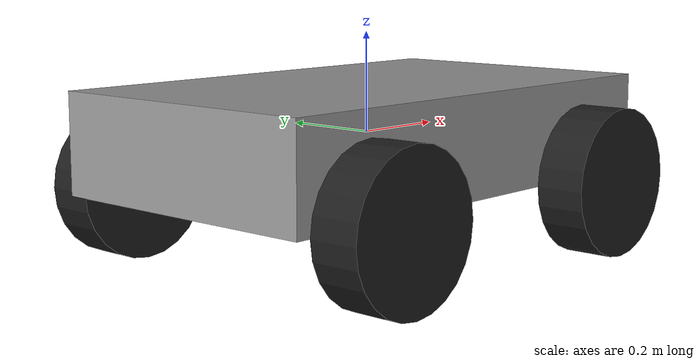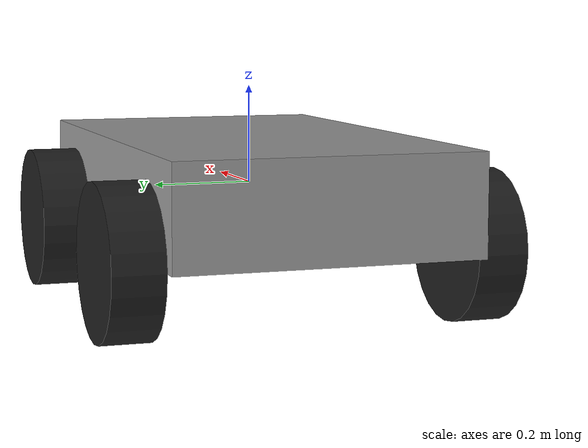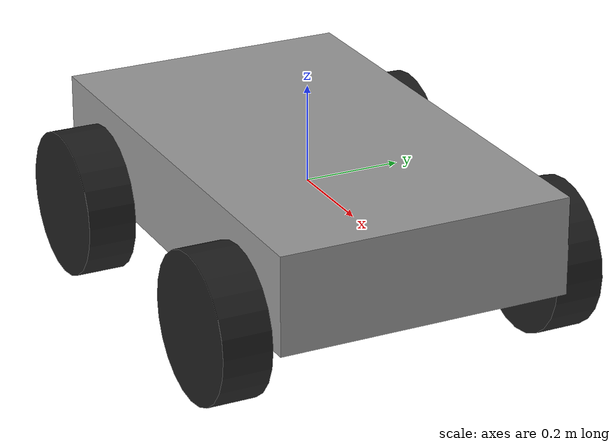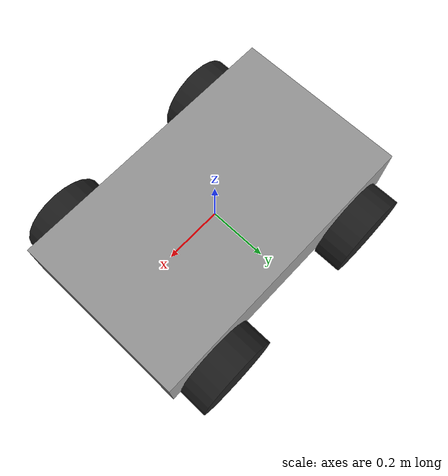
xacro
<?xml version="1.0"?>
<!--Simple platform base rover for Chalmers BA thesis-->
<!--Made by Oscar Karbin 2024-->
<robot name="differential_drive_robot" xmlns:xacro="http://www.ros.org/wiki/xacro">

<!-- Main body link dimensions -->
<xacro:property name="body_link_x_dim" value="1"/>
<xacro:property name="body_link_y_dim" value="0.6"/>
<xacro:property name="body_link_z_dim" value="0.2"/>

<!-- Wheel dimenstions -->
<xacro:property name="wheel_link_rad" value="0.15"/>
<xacro:property name="wheel_link_len" value="0.1"/>
<xacro:property name="wheel_link_z_location" value="-0.1"/>

<!-- Material density -->
<xacro:property name="body_density" value="2710.0"/>
<xacro:property name="wheel_density" value="2710.0"/>

<!--Pi-->
<xacro:property name="pi_const" value="3.14159265"/>

<!-- Robot body and wheel mass -->
<xacro:property name="body_mass" value="${body_density*body_link_x_dim*body_link_y_dim*body_link_z_dim}"/>
<xacro:property name="wheel_mass" value="${wheel_density*pi_const*wheel_link_rad*wheel_link_rad*wheel_link_len}"/>

<!-- Moments of intertia of the wheel -->
<xacro:property name="Iz_wheel" value="${0.5*wheel_mass*wheel_link_rad*wheel_link_rad}" />
<xacro:property name="I_wheel" value="${(1.0/12.0)*wheel_mass*(3.0*wheel_link_rad*wheel_link_rad+wheel_link_len*wheel_link_len)}"/>

<xacro:macro name="inertia_wheel">
    <inertial>
        <origin rpy="0 0 0" xyz="0 0 0"/>
        <mass value="${wheel_mass}"/>
        <inertia ixx="${I_wheel}" ixy="0.0" ixz="0.0" iyy="${I_wheel}" iyz="0" izz="${Iz_wheel}"/>
    </inertial>
</xacro:macro>

<!-- Include gazebo options and motion control driver-->
<xacro:include filename="$(find mobile_robot)/model/platform.gazebo"/>

<!--Links and joints etc-->
<link name="dummy">
</link>
<joint name="dummy_joint" type="fixed">
    <parent link="dummy"/>
    <child link="body_link"/>
</joint>

<link name="body_link">
    <visual>
        <geometry>
            <box size="${body_link_x_dim} ${body_link_y_dim} ${body_link_z_dim}"/>
        </geometry>
        <origin rpy="0 0 0" xyz="0 0 0"/>
    </visual>

    <collision>
        <geometry>
            <box size="${body_link_x_dim} ${body_link_y_dim} ${body_link_z_dim}"/>
        </geometry>
        <origin rpy="0 0 0" xyz="0 0 0"/>
    </collision>

    <inertial>
        <origin rpy="0 0 0" xyz="0 0 0"/>
        <mass value="${body_mass}"/>
        <inertia ixx="${(1/12)*body_mass*(body_link_y_dim*body_link_y_dim+body_link_z_dim*body_link_z_dim)}"
                ixy="0" ixz="0"
                iyy="${(1/12)*body_mass*(body_link_x_dim*body_link_x_dim+body_link_z_dim*body_link_z_dim)}"
                iyz="0"
                izz="${(1/12)*body_mass*(body_link_y_dim*body_link_y_dim+body_link_x_dim*body_link_x_dim)}"/>
    </inertial>
</link>

<joint name="wheel1_joint" type="continuous">
    <parent link="body_link"/>
    <child link="wheel1_link"/>
    <origin xyz="${-body_link_x_dim/2+1.2*wheel_link_rad} ${-body_link_y_dim/2-wheel_link_len/2} ${wheel_link_z_location}" rpy="0 0 0"/>
    <axis xyz="0 1 0"/>
    <limit effort="1000" velocity="1000"/>
    <dynamics damping="1.0" friction="1.0"/>
</joint>

<link name="wheel1_link">
  <visual>
    <origin rpy="1.570795 0 0" xyz="0 0 0"/>
    <geometry>
      <cylinder length="${wheel_link_len}" radius="${wheel_link_rad}"/>
    </geometry>
  </visual>

  <collision>
    <origin rpy="1.570795 0 0" xyz="0 0 0"/>
    <geometry>
      <cylinder length="${wheel_link_len}" radius="${wheel_link_rad}"/>
    </geometry>
  </collision>

  <xacro:inertia_wheel/>
</link>

<joint name="wheel2_joint" type="continuous">
    <parent link="body_link"/>
    <child link="wheel2_link"/>
    <origin xyz="${-body_link_x_dim/2+1.2*wheel_link_rad} ${body_link_y_dim/2+wheel_link_len/2} ${wheel_link_z_location}" rpy="0 0 0"/>
    <axis xyz="0 1 0"/>
    <limit effort="1000" velocity="1000"/>
    <dynamics damping="1.0" friction="1.0"/>
</joint>

<link name="wheel2_link">
  <visual>
    <origin rpy="1.570795 0 0" xyz="0 0 0"/>
    <geometry>
      <cylinder length="${wheel_link_len}" radius="${wheel_link_rad}"/>
    </geometry>
  </visual>

  <collision>
    <origin rpy="1.570795 0 0" xyz="0 0 0"/>
    <geometry>
      <cylinder length="${wheel_link_len}" radius="${wheel_link_rad}"/>
    </geometry>
  </collision>

  <xacro:inertia_wheel/>
</link>

<joint name="wheel3_joint" type="continuous">
    <parent link="body_link"/>
    <child link="wheel3_link"/>
    <origin xyz="${body_link_x_dim/2-1.2*wheel_link_rad} ${-body_link_y_dim/2-wheel_link_len/2} ${wheel_link_z_location}" rpy="0 0 0"/>
    <axis xyz="0 1 0"/>
    <limit effort="1000" velocity="1000"/>
    <dynamics damping="1.0" friction="1.0"/>
</joint>

<link name="wheel3_link">
  <visual>
    <origin rpy="1.570795 0 0" xyz="0 0 0"/>
    <geometry>
      <cylinder length="${wheel_link_len}" radius="${wheel_link_rad}"/>
    </geometry>
  </visual>

  <collision>
    <origin rpy="1.570795 0 0" xyz="0 0 0"/>
    <geometry>
      <cylinder length="${wheel_link_len}" radius="${wheel_link_rad}"/>
    </geometry>
  </collision>

  <xacro:inertia_wheel/>
</link>

<joint name="wheel4_joint" type="continuous">
    <parent link="body_link"/>
    <child link="wheel4_link"/>
    <origin xyz="${body_link_x_dim/2-1.2*wheel_link_rad} ${body_link_y_dim/2+wheel_link_len/2} ${wheel_link_z_location}" rpy="0 0 0"/>
    <axis xyz="0 1 0"/>
    <limit effort="1000" velocity="1000"/>
    <dynamics damping="1.0" friction="1.0"/>
</joint>

<link name="wheel4_link">
  <visual>
    <origin rpy="1.570795 0 0" xyz="0 0 0"/>
    <geometry>
      <cylinder length="${wheel_link_len}" radius="${wheel_link_rad}"/>
    </geometry>
  </visual>

  <collision>
    <origin rpy="1.570795 0 0" xyz="0 0 0"/>
    <geometry>
      <cylinder length="${wheel_link_len}" radius="${wheel_link_rad}"/>
    </geometry>
  </collision>

  <xacro:inertia_wheel/>
</link>
</robot>
